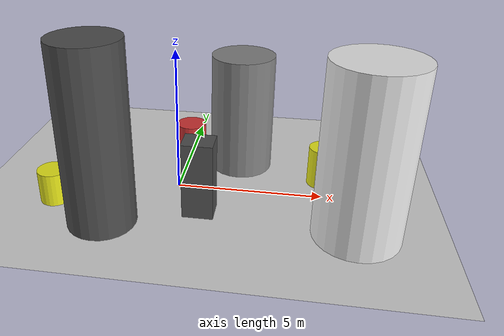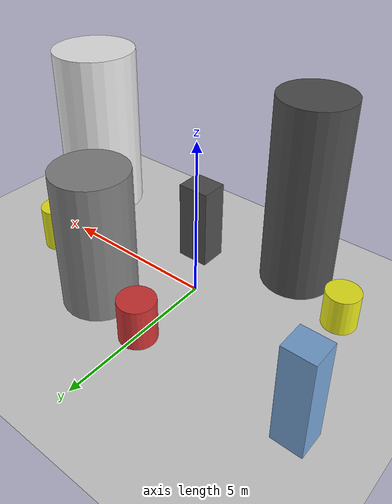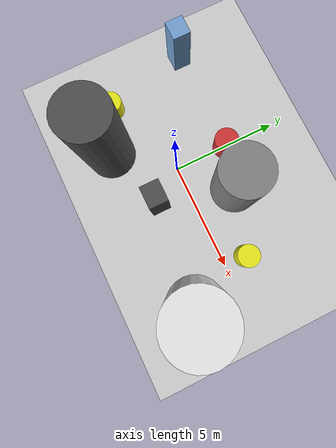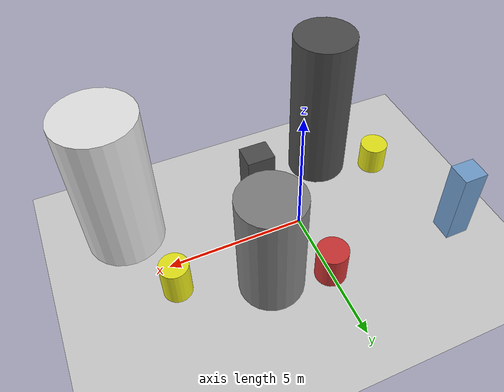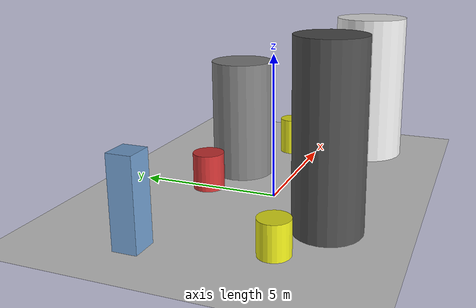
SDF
<?xml version='1.0'?>
<sdf version='1.6'>
  <world name='routeA_rl_v1__support_expansion__rl_test__mixed_3d_low_density_route__000173'>
    <!-- Sun light -->
    <light name='sun' type='directional'>
      <cast_shadows>1</cast_shadows>
      <pose>0 0 10 0 0 0</pose>
      <diffuse>0.8 0.8 0.8 1</diffuse>
      <specular>0.2 0.2 0.2 1</specular>
      <attenuation>
        <range>1000</range>
        <constant>0.9</constant>
        <linear>0.01</linear>
        <quadratic>0.001</quadratic>
      </attenuation>
      <direction>-0.5 0.1 -0.9</direction>
    </light>

    <!-- Ground plane -->
    <model name='ground_plane'>
      <static>1</static>
      <link name='link'>
        <collision name='collision'>
          <geometry>
            <plane>
              <normal>0 0 1</normal>
              <size>100 100</size>
            </plane>
          </geometry>
          <surface>
            <contact>
              <collide_bitmask>65535</collide_bitmask>
              <ode/>
            </contact>
            <friction>
              <ode>
                <mu>100</mu>
                <mu2>50</mu2>
              </ode>
              <torsional><ode/></torsional>
            </friction>
            <bounce/>
          </surface>
          <max_contacts>10</max_contacts>
        </collision>
        <visual name='visual'>
          <cast_shadows>0</cast_shadows>
          <geometry>
            <plane>
              <normal>0 0 1</normal>
              <size>100 100</size>
            </plane>
          </geometry>
          <material>
            <script>
              <uri>file://media/materials/scripts/gazebo.material</uri>
              <n>Gazebo/Grey</n>
            </script>
          </material>
        </visual>
      </link>
    </model>

    <!-- Environment -->
    <magnetic_field>6e-06 2.3e-05 -4.2e-05</magnetic_field>
    <atmosphere type='adiabatic'/>
    <physics name='default_physics' default='0' type='ode'>
      <gravity>0 0 -9.8</gravity>
      <max_step_size>0.004</max_step_size>
      <real_time_factor>1</real_time_factor>
      <real_time_update_rate>250</real_time_update_rate>
    </physics>
    <scene>
      <ambient>0.4 0.4 0.4 1</ambient>
      <background>0.7 0.7 0.7 1</background>
      <shadows>1</shadows>
    </scene>
    <wind/>
    <spherical_coordinates>
      <surface_model>EARTH_WGS84</surface_model>
      <latitude_deg>0</latitude_deg>
      <longitude_deg>0</longitude_deg>
      <elevation>0</elevation>
      <heading_deg>0</heading_deg>
    </spherical_coordinates>

    <!-- ============ OBSTACLES (8) ============ -->
    <model name='low_obs_0'>
      <static>1</static>
      <link name='link'>
        <visual name='visual'>
          <geometry>
            <cylinder>
              <radius>0.5178</radius>
              <length>1.1397</length>
            </cylinder>
          </geometry>
          <material>
            <script>
              <n>Gazebo/Yellow</n>
              <uri>file://media/materials/scripts/gazebo.material</uri>
            </script>
            <ambient>0.9 0.9 0.1 1</ambient>
          </material>
        </visual>
        <collision name='collision'>
          <geometry>
            <cylinder>
              <radius>0.5178</radius>
              <length>1.1397</length>
            </cylinder>
          </geometry>
          <max_contacts>10</max_contacts>
          <surface>
            <contact><ode/></contact>
            <bounce/>
            <friction>
              <ode><mu>1</mu><mu2>1</mu2></ode>
              <torsional><ode/></torsional>
            </friction>
          </surface>
        </collision>
      </link>
      <pose>-4.0000 -1.5000 0.5698 0 0 0.0000</pose>
    </model>

    <model name='low_obs_1'>
      <static>1</static>
      <link name='link'>
        <visual name='visual'>
          <geometry>
            <cylinder>
              <radius>0.5594</radius>
              <length>1.3106</length>
            </cylinder>
          </geometry>
          <material>
            <script>
              <n>Gazebo/Red</n>
              <uri>file://media/materials/scripts/gazebo.material</uri>
            </script>
            <ambient>0.8 0.2 0.2 1</ambient>
          </material>
        </visual>
        <collision name='collision'>
          <geometry>
            <cylinder>
              <radius>0.5594</radius>
              <length>1.3106</length>
            </cylinder>
          </geometry>
          <max_contacts>10</max_contacts>
          <surface>
            <contact><ode/></contact>
            <bounce/>
            <friction>
              <ode><mu>1</mu><mu2>1</mu2></ode>
              <torsional><ode/></torsional>
            </friction>
          </surface>
        </collision>
      </link>
      <pose>0.0000 2.5000 0.6553 0 0 0.0000</pose>
    </model>

    <model name='low_obs_2'>
      <static>1</static>
      <link name='link'>
        <visual name='visual'>
          <geometry>
            <cylinder>
              <radius>0.5025</radius>
              <length>1.4172</length>
            </cylinder>
          </geometry>
          <material>
            <script>
              <n>Gazebo/Yellow</n>
              <uri>file://media/materials/scripts/gazebo.material</uri>
            </script>
            <ambient>0.9 0.9 0.1 1</ambient>
          </material>
        </visual>
        <collision name='collision'>
          <geometry>
            <cylinder>
              <radius>0.5025</radius>
              <length>1.4172</length>
            </cylinder>
          </geometry>
          <max_contacts>10</max_contacts>
          <surface>
            <contact><ode/></contact>
            <bounce/>
            <friction>
              <ode><mu>1</mu><mu2>1</mu2></ode>
              <torsional><ode/></torsional>
            </friction>
          </surface>
        </collision>
      </link>
      <pose>5.0000 1.0000 0.7086 0 0 0.0000</pose>
    </model>

    <model name='tall_obs_0'>
      <static>1</static>
      <link name='link'>
        <visual name='visual'>
          <geometry>
            <cylinder>
              <radius>1.1214</radius>
              <length>6.0429</length>
            </cylinder>
          </geometry>
          <material>
            <script>
              <n>Gazebo/DarkGrey</n>
              <uri>file://media/materials/scripts/gazebo.material</uri>
            </script>
            <ambient>0.3 0.3 0.3 1</ambient>
          </material>
        </visual>
        <collision name='collision'>
          <geometry>
            <cylinder>
              <radius>1.1214</radius>
              <length>6.0429</length>
            </cylinder>
          </geometry>
          <max_contacts>10</max_contacts>
          <surface>
            <contact><ode/></contact>
            <bounce/>
            <friction>
              <ode><mu>1</mu><mu2>1</mu2></ode>
              <torsional><ode/></torsional>
            </friction>
          </surface>
        </collision>
      </link>
      <pose>-2.0000 -2.5000 3.0215 0 0 0.0000</pose>
    </model>

    <model name='tall_obs_1'>
      <static>1</static>
      <link name='link'>
        <visual name='visual'>
          <geometry>
            <cylinder>
              <radius>1.1302</radius>
              <length>4.3280</length>
            </cylinder>
          </geometry>
          <material>
            <script>
              <n>Gazebo/Grey</n>
              <uri>file://media/materials/scripts/gazebo.material</uri>
            </script>
            <ambient>0.5 0.5 0.5 1</ambient>
          </material>
        </visual>
        <collision name='collision'>
          <geometry>
            <cylinder>
              <radius>1.1302</radius>
              <length>4.3280</length>
            </cylinder>
          </geometry>
          <max_contacts>10</max_contacts>
          <surface>
            <contact><ode/></contact>
            <bounce/>
            <friction>
              <ode><mu>1</mu><mu2>1</mu2></ode>
              <torsional><ode/></torsional>
            </friction>
          </surface>
        </collision>
      </link>
      <pose>2.0000 2.0000 2.1640 0 0 0.0000</pose>
    </model>

    <model name='tall_obs_2'>
      <static>1</static>
      <link name='link'>
        <visual name='visual'>
          <geometry>
            <cylinder>
              <radius>1.3877</radius>
              <length>5.6710</length>
            </cylinder>
          </geometry>
          <material>
            <script>
              <n>Gazebo/White</n>
              <uri>file://media/materials/scripts/gazebo.material</uri>
            </script>
            <ambient>0.9 0.9 0.9 1</ambient>
          </material>
        </visual>
        <collision name='collision'>
          <geometry>
            <cylinder>
              <radius>1.3877</radius>
              <length>5.6710</length>
            </cylinder>
          </geometry>
          <max_contacts>10</max_contacts>
          <surface>
            <contact><ode/></contact>
            <bounce/>
            <friction>
              <ode><mu>1</mu><mu2>1</mu2></ode>
              <torsional><ode/></torsional>
            </friction>
          </surface>
        </collision>
      </link>
      <pose>6.0000 -2.0000 2.8355 0 0 0.0000</pose>
    </model>

    <model name='med_obs_0'>
      <static>1</static>
      <link name='link'>
        <visual name='visual'>
          <geometry>
            <box>
              <size>0.8794 0.8182 2.9676</size>
            </box>
          </geometry>
          <material>
            <script>
              <n>Gazebo/Blue</n>
              <uri>file://media/materials/scripts/gazebo.material</uri>
            </script>
            <ambient>0.447 0.624 0.812 1</ambient>
          </material>
        </visual>
        <collision name='collision'>
          <geometry>
            <box>
              <size>0.8794 0.8182 2.9676</size>
            </box>
          </geometry>
          <max_contacts>10</max_contacts>
          <surface>
            <contact><ode/></contact>
            <bounce/>
            <friction>
              <ode><mu>1</mu><mu2>1</mu2></ode>
              <torsional><ode/></torsional>
            </friction>
          </surface>
        </collision>
      </link>
      <pose>-5.0000 2.5000 1.4838 0 0 0.0000</pose>
    </model>

    <model name='med_obs_1'>
      <static>1</static>
      <link name='link'>
        <visual name='visual'>
          <geometry>
            <box>
              <size>1.0204 0.8663 2.6109</size>
            </box>
          </geometry>
          <material>
            <script>
              <n>Gazebo/DarkGrey</n>
              <uri>file://media/materials/scripts/gazebo.material</uri>
            </script>
            <ambient>0.3 0.3 0.3 1</ambient>
          </material>
        </visual>
        <collision name='collision'>
          <geometry>
            <box>
              <size>1.0204 0.8663 2.6109</size>
            </box>
          </geometry>
          <max_contacts>10</max_contacts>
          <surface>
            <contact><ode/></contact>
            <bounce/>
            <friction>
              <ode><mu>1</mu><mu2>1</mu2></ode>
              <torsional><ode/></torsional>
            </friction>
          </surface>
        </collision>
      </link>
      <pose>1.0000 -1.5000 1.3055 0 0 0.0000</pose>
    </model>

    <!-- GUI camera -->
    <gui fullscreen='0'>
      <camera name='user_camera'>
        <pose>-15 0 18 0 0.85 0.15</pose>
        <view_controller>orbit</view_controller>
        <projection_type>perspective</projection_type>
      </camera>
    </gui>
  </world>
</sdf>
